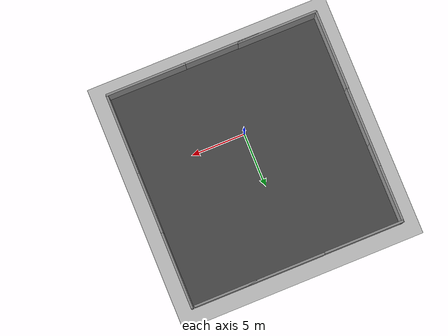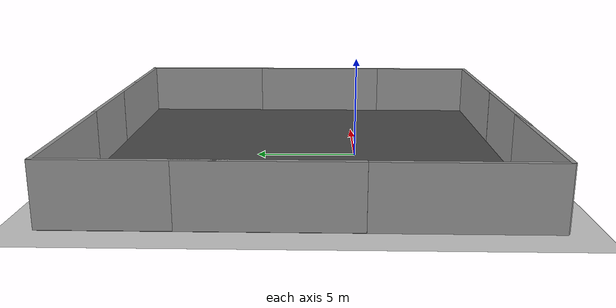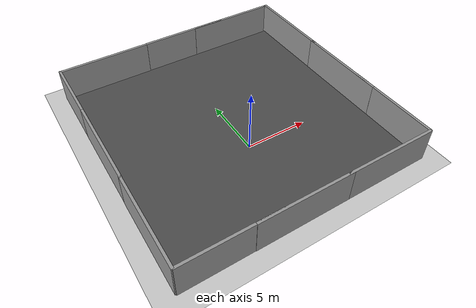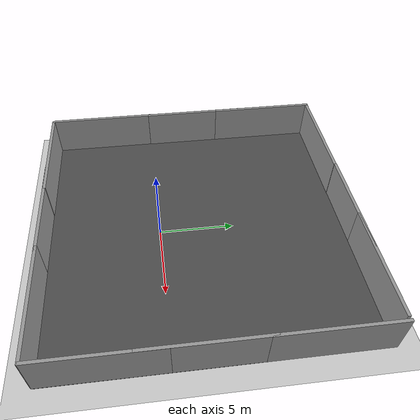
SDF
<sdf version="1.6">
 <world name="default">
  <light name="sun" type="directional">
   <pose>0 0 10 0 -0 0</pose>
   <diffuse>0.8 0.8 0.8 1</diffuse>
   <specular>0.1 0.1 0.1 1</specular>
   <attenuation>
    <range>1000</range>
    <constant>0.9</constant>
    <linear>0.01</linear>
    <quadratic>0.001</quadratic>
   </attenuation>
   <direction>-0.5 0.5 -1</direction>
  </light>
  <model name="ground_plane">
   <static>1</static>
   <link name="link">
    <collision name="collision">
     <geometry><plane><normal>0 0 1</normal><size>100 100</size></plane></geometry>
     <surface><friction><ode><mu>100</mu><mu2>50</mu2></ode></friction></surface>
    </collision>
    <visual name="visual">
     <cast_shadows>0</cast_shadows>
     <geometry><plane><normal>0 0 1</normal><size>100 100</size></plane></geometry>
     <material>
      <script><uri>file://media/materials/scripts/gazebo.material</uri><name>Gazebo/Grey</name></script>
     </material>
    </visual>
   </link>
  </model>
  <gravity>0 0 -9.8</gravity>
  <magnetic_field>6e-06 2.3e-05 -4.2e-05</magnetic_field>
  <atmosphere type="adiabatic"/>
  <physics name="default_physics" default="0" type="ode">
   <max_step_size>0.001</max_step_size>
   <real_time_factor>1</real_time_factor>
   <real_time_update_rate>1000</real_time_update_rate>
  </physics>
  <scene><ambient>0.4 0.4 0.4 1</ambient><background>0.7 0.7 0.7 1</background><shadows>1</shadows></scene>
  <spherical_coordinates>
   <surface_model>EARTH_WGS84</surface_model>
   <latitude_deg>0</latitude_deg>
   <longitude_deg>0</longitude_deg>
   <elevation>0</elevation>
   <heading_deg>0</heading_deg>
  </spherical_coordinates>
  <model name="asphalt_plane">
   <static>1</static>
   <link name="link">
    <collision name="collision"><geometry><box><size>20 20 0.1</size></box></geometry></collision>
    <visual name="visual">
     <cast_shadows>0</cast_shadows>
     <geometry><box><size>20 20 0.1</size></box></geometry>
     <material>
      <script>
       <uri>model://asphalt_plane/materials/scripts</uri>
       <uri>model://asphalt_plane/materials/textures</uri>
       <name>vrc/asphalt</name>
      </script>
     </material>
    </visual>
   </link>
   <pose>0.118211 2.53121 0 0 -0 0</pose>
  </model>
  <model name="grey_wall">
   <static>1</static>
   <link name="link">
    <pose>0 0 1.4 0 -0 0</pose>
    <collision name="collision"><geometry><box><size>7.5 0.2 2.8</size></box></geometry></collision>
    <visual name="visual">
     <cast_shadows>0</cast_shadows>
     <geometry><box><size>7.5 0.2 2.8</size></box></geometry>
     <material>
      <script>
       <uri>model://grey_wall/materials/scripts</uri>
       <uri>model://grey_wall/materials/textures</uri>
       <name>vrc/grey_wall</name>
      </script>
     </material>
    </visual>
   </link>
   <pose>-6.12088 12.5657 0 0 -0 0</pose>
  </model>
  <model name="grey_wall_clone">
   <static>1</static>
   <link name="link">
    <pose>0 0 1.4 0 -0 0</pose>
    <collision name="collision"><geometry><box><size>7.5 0.2 2.8</size></box></geometry></collision>
    <visual name="visual">
     <cast_shadows>0</cast_shadows>
     <geometry><box><size>7.5 0.2 2.8</size></box></geometry>
     <material>
      <script>
       <uri>model://grey_wall/materials/scripts</uri>
       <uri>model://grey_wall/materials/textures</uri>
       <name>vrc/grey_wall</name>
      </script>
     </material>
    </visual>
   </link>
   <pose>1.30377 12.5889 0 0 -0 0</pose>
  </model>
  <model name="grey_wall_clone_clone">
   <static>1</static>
   <link name="link">
    <pose>0 0 1.4 0 -0 0</pose>
    <collision name="collision"><geometry><box><size>7.5 0.2 2.8</size></box></geometry></collision>
    <visual name="visual">
     <cast_shadows>0</cast_shadows>
     <geometry><box><size>7.5 0.2 2.8</size></box></geometry>
     <material>
      <script>
       <uri>model://grey_wall/materials/scripts</uri>
       <uri>model://grey_wall/materials/textures</uri>
       <name>vrc/grey_wall</name>
      </script>
     </material>
    </visual>
   </link>
   <pose>6.06552 12.5877 0 0 -0 0</pose>
  </model>
  <model name="grey_wall_clone_clone_0">
   <static>1</static>
   <link name="link">
    <pose>0 0 1.4 0 -0 0</pose>
    <collision name="collision"><geometry><box><size>7.5 0.2 2.8</size></box></geometry></collision>
    <visual name="visual">
     <cast_shadows>0</cast_shadows>
     <geometry><box><size>7.5 0.2 2.8</size></box></geometry>
     <material>
      <script>
       <uri>model://grey_wall/materials/scripts</uri>
       <uri>model://grey_wall/materials/textures</uri>
       <name>vrc/grey_wall</name>
      </script>
     </material>
    </visual>
   </link>
   <pose>10.0357 8.94712 0 0 0 -1.57154</pose>
  </model>
  <model name="grey_wall_clone_clone_0_clone">
   <static>1</static>
   <link name="link">
    <pose>0 0 1.4 0 -0 0</pose>
    <collision name="collision"><geometry><box><size>7.5 0.2 2.8</size></box></geometry></collision>
    <visual name="visual">
     <cast_shadows>0</cast_shadows>
     <geometry><box><size>7.5 0.2 2.8</size></box></geometry>
     <material>
      <script>
       <uri>model://grey_wall/materials/scripts</uri>
       <uri>model://grey_wall/materials/textures</uri>
       <name>vrc/grey_wall</name>
      </script>
     </material>
    </visual>
   </link>
   <pose>10.0219 1.85289 0 0 0 -1.57154</pose>
  </model>
  <model name="grey_wall_clone_clone_0_clone_0">
   <static>1</static>
   <link name="link">
    <pose>0 0 1.4 0 -0 0</pose>
    <collision name="collision"><geometry><box><size>7.5 0.2 2.8</size></box></geometry></collision>
    <visual name="visual">
     <cast_shadows>0</cast_shadows>
     <geometry><box><size>7.5 0.2 2.8</size></box></geometry>
     <material>
      <script>
       <uri>model://grey_wall/materials/scripts</uri>
       <uri>model://grey_wall/materials/textures</uri>
       <name>vrc/grey_wall</name>
      </script>
     </material>
    </visual>
   </link>
   <pose>10.0217 -3.76546 0 0 0 -1.57154</pose>
  </model>
  <model name="grey_wall_clone_clone_clone">
   <static>1</static>
   <link name="link">
    <pose>0 0 1.4 0 -0 0</pose>
    <collision name="collision"><geometry><box><size>7.5 0.2 2.8</size></box></geometry></collision>
    <visual name="visual">
     <cast_shadows>0</cast_shadows>
     <geometry><box><size>7.5 0.2 2.8</size></box></geometry>
     <material>
      <script>
       <uri>model://grey_wall/materials/scripts</uri>
       <uri>model://grey_wall/materials/textures</uri>
       <name>vrc/grey_wall</name>
      </script>
     </material>
    </visual>
   </link>
   <pose>6.33498 -7.46812 0 0 -0 0</pose>
  </model>
  <model name="grey_wall_clone_clone_clone_0">
   <static>1</static>
   <link name="link">
    <pose>0 0 1.4 0 -0 0</pose>
    <collision name="collision"><geometry><box><size>7.5 0.2 2.8</size></box></geometry></collision>
    <visual name="visual">
     <cast_shadows>0</cast_shadows>
     <geometry><box><size>7.5 0.2 2.8</size></box></geometry>
     <material>
      <script>
       <uri>model://grey_wall/materials/scripts</uri>
       <uri>model://grey_wall/materials/textures</uri>
       <name>vrc/grey_wall</name>
      </script>
     </material>
    </visual>
   </link>
   <pose>-0.740583 -7.47315 0 0 -0 0</pose>
  </model>
  <model name="grey_wall_clone_clone_clone_1">
   <static>1</static>
   <link name="link">
    <pose>0 0 1.4 0 -0 0</pose>
    <collision name="collision"><geometry><box><size>7.5 0.2 2.8</size></box></geometry></collision>
    <visual name="visual">
     <cast_shadows>0</cast_shadows>
     <geometry><box><size>7.5 0.2 2.8</size></box></geometry>
     <material>
      <script>
       <uri>model://grey_wall/materials/scripts</uri>
       <uri>model://grey_wall/materials/textures</uri>
       <name>vrc/grey_wall</name>
      </script>
     </material>
    </visual>
   </link>
   <pose>-6.13352 -7.45259 0 0 -0 0</pose>
  </model>
  <model name="grey_wall_clone_clone_0_clone_0_clone">
   <static>1</static>
   <link name="link">
    <pose>0 0 1.4 0 -0 0</pose>
    <collision name="collision"><geometry><box><size>7.5 0.2 2.8</size></box></geometry></collision>
    <visual name="visual">
     <cast_shadows>0</cast_shadows>
     <geometry><box><size>7.5 0.2 2.8</size></box></geometry>
     <material>
      <script>
       <uri>model://grey_wall/materials/scripts</uri>
       <uri>model://grey_wall/materials/textures</uri>
       <name>vrc/grey_wall</name>
      </script>
     </material>
    </visual>
   </link>
   <pose>-9.85191 -3.7327 0 0 0 -1.57154</pose>
  </model>
  <model name="grey_wall_clone_clone_0_clone_0_clone_0">
   <static>1</static>
   <link name="link">
    <pose>0 0 1.4 0 -0 0</pose>
    <collision name="collision"><geometry><box><size>7.5 0.2 2.8</size></box></geometry></collision>
    <visual name="visual">
     <cast_shadows>0</cast_shadows>
     <geometry><box><size>7.5 0.2 2.8</size></box></geometry>
     <material>
      <script>
       <uri>model://grey_wall/materials/scripts</uri>
       <uri>model://grey_wall/materials/textures</uri>
       <name>vrc/grey_wall</name>
      </script>
     </material>
    </visual>
   </link>
   <pose>-9.82614 3.59127 0 0 0 -1.57154</pose>
  </model>
  <model name="grey_wall_clone_clone_0_clone_0_clone_1">
   <static>1</static>
   <link name="link">
    <pose>0 0 1.4 0 -0 0</pose>
    <collision name="collision"><geometry><box><size>7.5 0.2 2.8</size></box></geometry></collision>
    <visual name="visual">
     <cast_shadows>0</cast_shadows>
     <geometry><box><size>7.5 0.2 2.8</size></box></geometry>
     <material>
      <script>
       <uri>model://grey_wall/materials/scripts</uri>
       <uri>model://grey_wall/materials/textures</uri>
       <name>vrc/grey_wall</name>
      </script>
     </material>
    </visual>
   </link>
   <pose>-9.81531 8.93213 0 0 0 -1.57154</pose>
  </model>
 </world>
</sdf>
